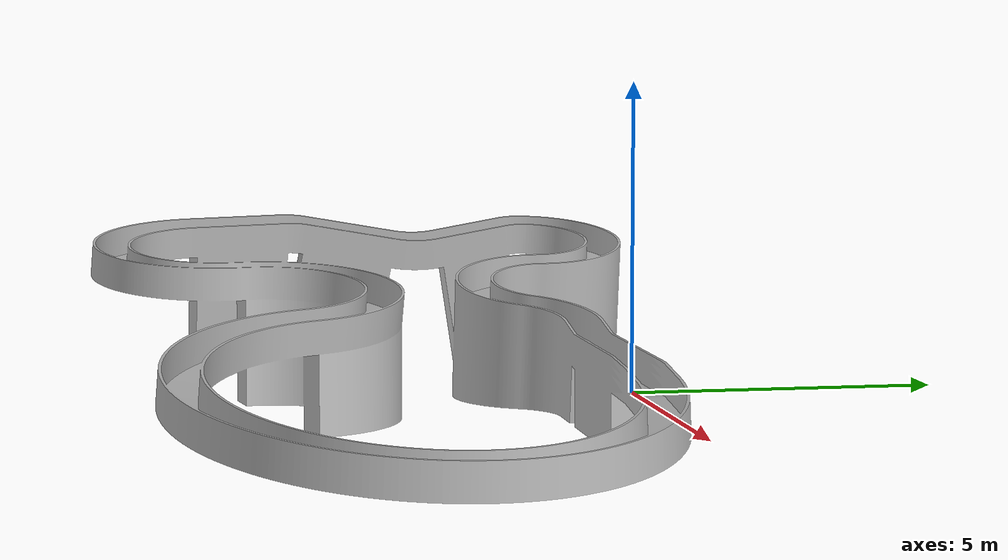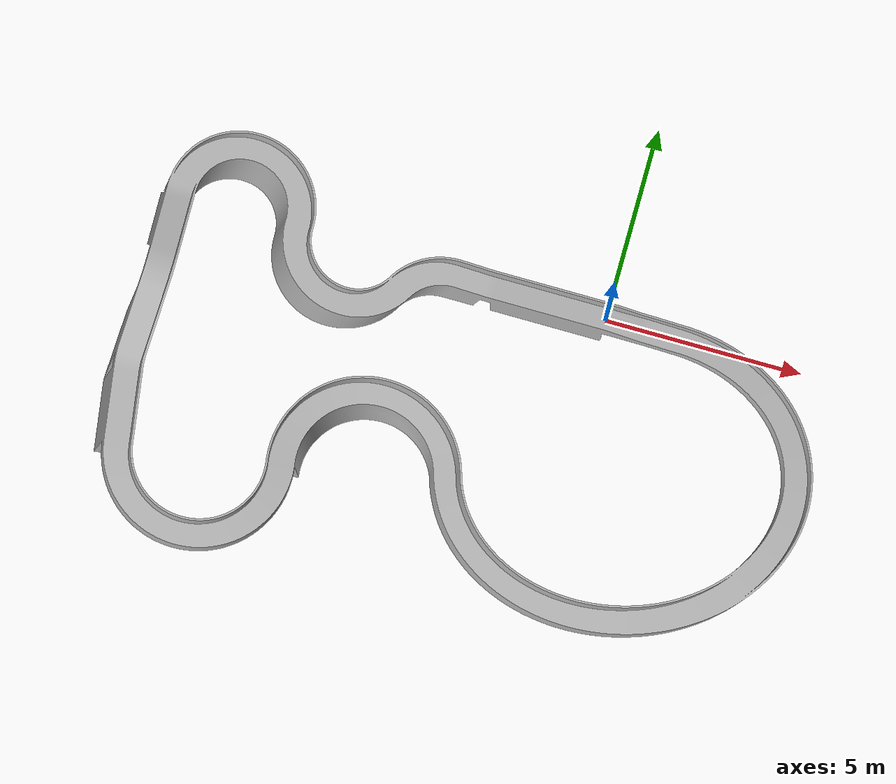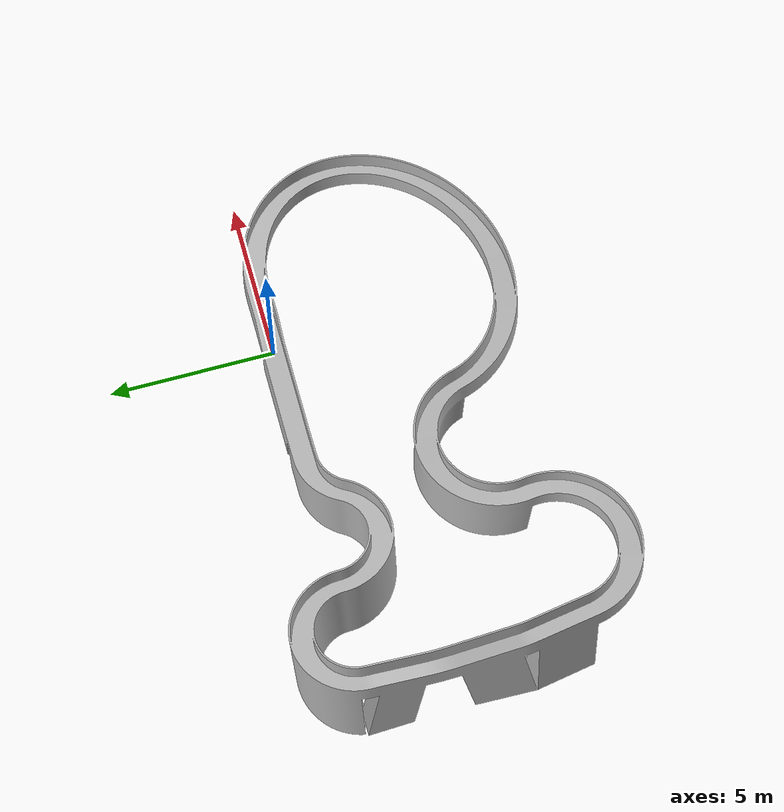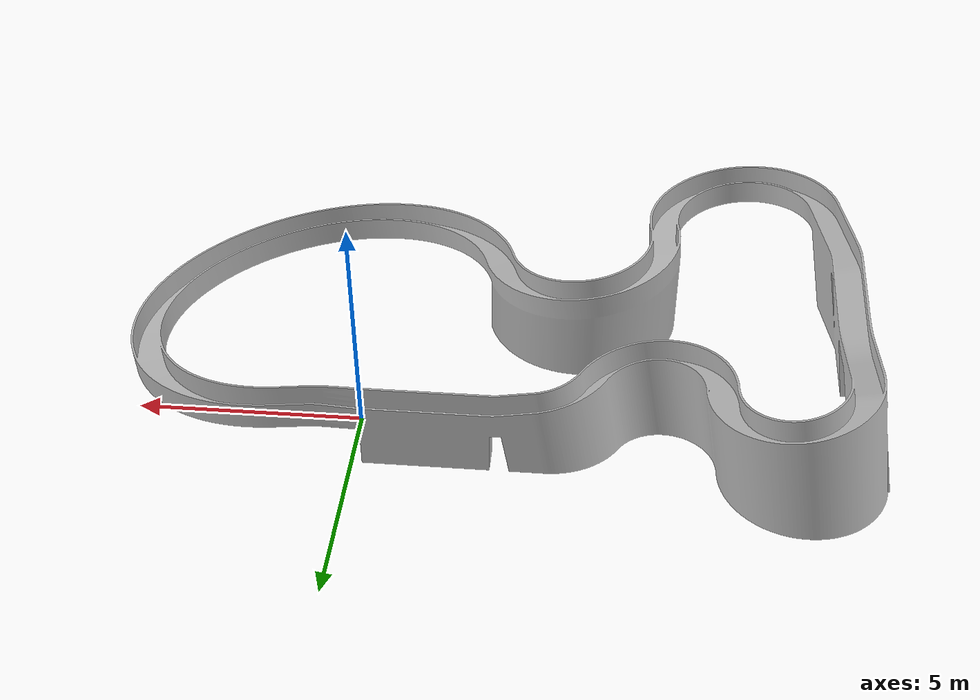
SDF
<?xml version="1.0" ?>
<sdf version="1.6">
  <model name="trajectory_2">
    <static>true</static>
    <link name="link">
      <collision name="collision">
        <geometry>
          <mesh>
            <uri>model://trajectory_2/meshes/trajectory_2.dae</uri>
          </mesh>
        </geometry>
      </collision>
      <visual name="visual">
        <geometry>
          <mesh>
            <uri>model://trajectory_2/meshes/trajectory_2.dae</uri>
          </mesh>
        </geometry>
      </visual>
    </link>
  </model>
</sdf>
